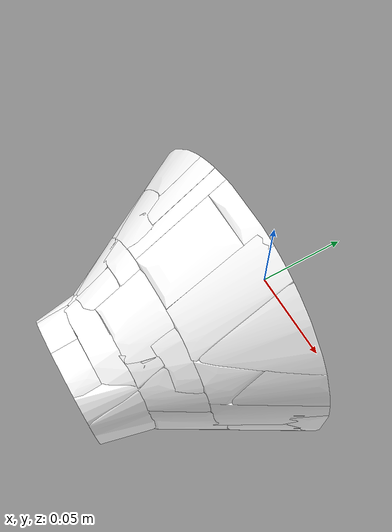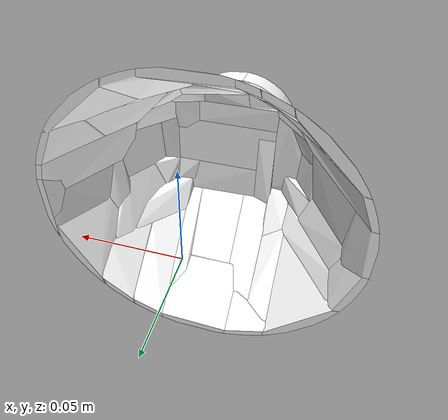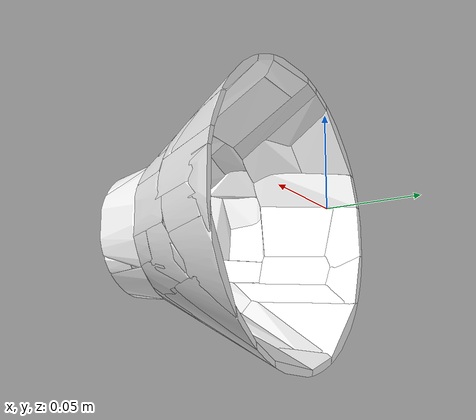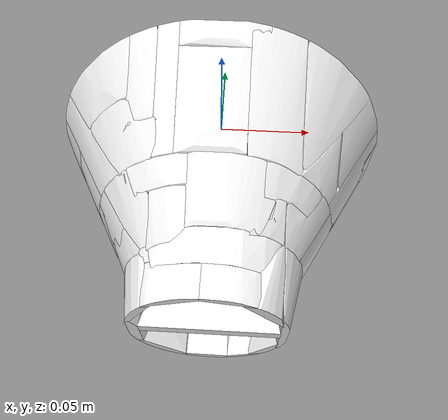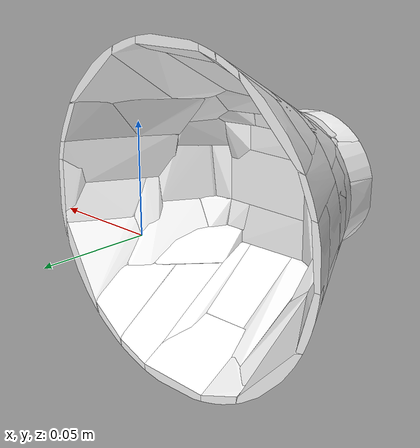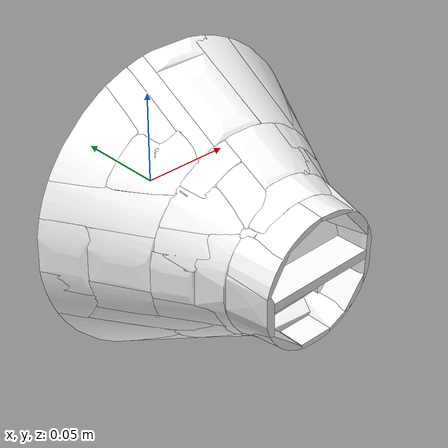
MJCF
<?xml version="1.0" ?>
<mujoco>
	<asset>
		<mesh name="bowl000" file="bowl_decomposed/bowl000.obj" scale="0.001 0.001 0.001"/>
		<mesh name="bowl001" file="bowl_decomposed/bowl001.obj" scale="0.001 0.001 0.001"/>
		<mesh name="bowl002" file="bowl_decomposed/bowl002.obj" scale="0.001 0.001 0.001"/>
		<mesh name="bowl003" file="bowl_decomposed/bowl003.obj" scale="0.001 0.001 0.001"/>
		<mesh name="bowl004" file="bowl_decomposed/bowl004.obj" scale="0.001 0.001 0.001"/>
		<mesh name="bowl005" file="bowl_decomposed/bowl005.obj" scale="0.001 0.001 0.001"/>
		<mesh name="bowl006" file="bowl_decomposed/bowl006.obj" scale="0.001 0.001 0.001"/>
		<mesh name="bowl007" file="bowl_decomposed/bowl007.obj" scale="0.001 0.001 0.001"/>
		<mesh name="bowl008" file="bowl_decomposed/bowl008.obj" scale="0.001 0.001 0.001"/>
		<mesh name="bowl009" file="bowl_decomposed/bowl009.obj" scale="0.001 0.001 0.001"/>
		<mesh name="bowl010" file="bowl_decomposed/bowl010.obj" scale="0.001 0.001 0.001"/>
		<mesh name="bowl011" file="bowl_decomposed/bowl011.obj" scale="0.001 0.001 0.001"/>
		<mesh name="bowl012" file="bowl_decomposed/bowl012.obj" scale="0.001 0.001 0.001"/>
		<mesh name="bowl013" file="bowl_decomposed/bowl013.obj" scale="0.001 0.001 0.001"/>
		<mesh name="bowl014" file="bowl_decomposed/bowl014.obj" scale="0.001 0.001 0.001"/>
		<mesh name="bowl015" file="bowl_decomposed/bowl015.obj" scale="0.001 0.001 0.001"/>
		<mesh name="bowl016" file="bowl_decomposed/bowl016.obj" scale="0.001 0.001 0.001"/>
		<mesh name="bowl017" file="bowl_decomposed/bowl017.obj" scale="0.001 0.001 0.001"/>
		<mesh name="bowl018" file="bowl_decomposed/bowl018.obj" scale="0.001 0.001 0.001"/>
		<mesh name="bowl019" file="bowl_decomposed/bowl019.obj" scale="0.001 0.001 0.001"/>
		<mesh name="bowl020" file="bowl_decomposed/bowl020.obj" scale="0.001 0.001 0.001"/>
		<mesh name="bowl021" file="bowl_decomposed/bowl021.obj" scale="0.001 0.001 0.001"/>
		<mesh name="bowl022" file="bowl_decomposed/bowl022.obj" scale="0.001 0.001 0.001"/>
		<mesh name="bowl023" file="bowl_decomposed/bowl023.obj" scale="0.001 0.001 0.001"/>
		<mesh name="bowl024" file="bowl_decomposed/bowl024.obj" scale="0.001 0.001 0.001"/>
		<mesh name="bowl025" file="bowl_decomposed/bowl025.obj" scale="0.001 0.001 0.001"/>
		<mesh name="bowl026" file="bowl_decomposed/bowl026.obj" scale="0.001 0.001 0.001"/>
		<mesh name="bowl027" file="bowl_decomposed/bowl027.obj" scale="0.001 0.001 0.001"/>
		<mesh name="bowl028" file="bowl_decomposed/bowl028.obj" scale="0.001 0.001 0.001"/>
		<mesh name="bowl029" file="bowl_decomposed/bowl029.obj" scale="0.001 0.001 0.001"/>
		<mesh name="bowl030" file="bowl_decomposed/bowl030.obj" scale="0.001 0.001 0.001"/>
		<mesh name="bowl031" file="bowl_decomposed/bowl031.obj" scale="0.001 0.001 0.001"/>
		<mesh name="bowl032" file="bowl_decomposed/bowl032.obj" scale="0.001 0.001 0.001"/>
		<mesh name="bowl033" file="bowl_decomposed/bowl033.obj" scale="0.001 0.001 0.001"/>
		<mesh name="bowl034" file="bowl_decomposed/bowl034.obj" scale="0.001 0.001 0.001"/>
		<mesh name="bowl035" file="bowl_decomposed/bowl035.obj" scale="0.001 0.001 0.001"/>
		<mesh name="bowl036" file="bowl_decomposed/bowl036.obj" scale="0.001 0.001 0.001"/>
		<mesh name="bowl037" file="bowl_decomposed/bowl037.obj" scale="0.001 0.001 0.001"/>
		<mesh name="bowl038" file="bowl_decomposed/bowl038.obj" scale="0.001 0.001 0.001"/>
		<mesh name="bowl039" file="bowl_decomposed/bowl039.obj" scale="0.001 0.001 0.001"/>
		<mesh name="bowl040" file="bowl_decomposed/bowl040.obj" scale="0.001 0.001 0.001"/>
		<mesh name="bowl041" file="bowl_decomposed/bowl041.obj" scale="0.001 0.001 0.001"/>
		<mesh name="bowl042" file="bowl_decomposed/bowl042.obj" scale="0.001 0.001 0.001"/>
		<mesh name="bowl043" file="bowl_decomposed/bowl043.obj" scale="0.001 0.001 0.001"/>
		<mesh name="bowl044" file="bowl_decomposed/bowl044.obj" scale="0.001 0.001 0.001"/>
		<mesh name="bowl045" file="bowl_decomposed/bowl045.obj" scale="0.001 0.001 0.001"/>
		<mesh name="bowl046" file="bowl_decomposed/bowl046.obj" scale="0.001 0.001 0.001"/>
		<mesh name="bowl047" file="bowl_decomposed/bowl047.obj" scale="0.001 0.001 0.001"/>
		<mesh name="bowl048" file="bowl_decomposed/bowl048.obj" scale="0.001 0.001 0.001"/>
		<mesh name="bowl049" file="bowl_decomposed/bowl049.obj" scale="0.001 0.001 0.001"/>
		<mesh name="bowl050" file="bowl_decomposed/bowl050.obj" scale="0.001 0.001 0.001"/>
		<mesh name="bowl051" file="bowl_decomposed/bowl051.obj" scale="0.001 0.001 0.001"/>
		<mesh name="bowl052" file="bowl_decomposed/bowl052.obj" scale="0.001 0.001 0.001"/>
		<mesh name="bowl053" file="bowl_decomposed/bowl053.obj" scale="0.001 0.001 0.001"/>
		<mesh name="bowl054" file="bowl_decomposed/bowl054.obj" scale="0.001 0.001 0.001"/>
		<mesh name="bowl055" file="bowl_decomposed/bowl055.obj" scale="0.001 0.001 0.001"/>
		<mesh name="bowl056" file="bowl_decomposed/bowl056.obj" scale="0.001 0.001 0.001"/>
		<mesh name="bowl057" file="bowl_decomposed/bowl057.obj" scale="0.001 0.001 0.001"/>
		<mesh name="bowl058" file="bowl_decomposed/bowl058.obj" scale="0.001 0.001 0.001"/>
		<mesh name="bowl059" file="bowl_decomposed/bowl059.obj" scale="0.001 0.001 0.001"/>
		<mesh name="bowl060" file="bowl_decomposed/bowl060.obj" scale="0.001 0.001 0.001"/>
		<mesh name="bowl061" file="bowl_decomposed/bowl061.obj" scale="0.001 0.001 0.001"/>
		<mesh name="bowl062" file="bowl_decomposed/bowl062.obj" scale="0.001 0.001 0.001"/>
		<mesh name="bowl063" file="bowl_decomposed/bowl063.obj" scale="0.001 0.001 0.001"/>
	</asset>
	<worldbody>
		<body>
			<geom name="bowl000_geom" type="mesh" mesh="bowl000" rgba="1 1 1 1"/>
			<geom name="bowl001_geom" type="mesh" mesh="bowl001" rgba="1 1 1 1"/>
			<geom name="bowl002_geom" type="mesh" mesh="bowl002" rgba="1 1 1 1"/>
			<geom name="bowl003_geom" type="mesh" mesh="bowl003" rgba="1 1 1 1"/>
			<geom name="bowl004_geom" type="mesh" mesh="bowl004" rgba="1 1 1 1"/>
			<geom name="bowl005_geom" type="mesh" mesh="bowl005" rgba="1 1 1 1"/>
			<geom name="bowl006_geom" type="mesh" mesh="bowl006" rgba="1 1 1 1"/>
			<geom name="bowl007_geom" type="mesh" mesh="bowl007" rgba="1 1 1 1"/>
			<geom name="bowl008_geom" type="mesh" mesh="bowl008" rgba="1 1 1 1"/>
			<geom name="bowl009_geom" type="mesh" mesh="bowl009" rgba="1 1 1 1"/>
			<geom name="bowl010_geom" type="mesh" mesh="bowl010" rgba="1 1 1 1"/>
			<geom name="bowl011_geom" type="mesh" mesh="bowl011" rgba="1 1 1 1"/>
			<geom name="bowl012_geom" type="mesh" mesh="bowl012" rgba="1 1 1 1"/>
			<geom name="bowl013_geom" type="mesh" mesh="bowl013" rgba="1 1 1 1"/>
			<geom name="bowl014_geom" type="mesh" mesh="bowl014" rgba="1 1 1 1"/>
			<geom name="bowl015_geom" type="mesh" mesh="bowl015" rgba="1 1 1 1"/>
			<geom name="bowl016_geom" type="mesh" mesh="bowl016" rgba="1 1 1 1"/>
			<geom name="bowl017_geom" type="mesh" mesh="bowl017" rgba="1 1 1 1"/>
			<geom name="bowl018_geom" type="mesh" mesh="bowl018" rgba="1 1 1 1"/>
			<geom name="bowl019_geom" type="mesh" mesh="bowl019" rgba="1 1 1 1"/>
			<geom name="bowl020_geom" type="mesh" mesh="bowl020" rgba="1 1 1 1"/>
			<geom name="bowl021_geom" type="mesh" mesh="bowl021" rgba="1 1 1 1"/>
			<geom name="bowl022_geom" type="mesh" mesh="bowl022" rgba="1 1 1 1"/>
			<geom name="bowl023_geom" type="mesh" mesh="bowl023" rgba="1 1 1 1"/>
			<geom name="bowl024_geom" type="mesh" mesh="bowl024" rgba="1 1 1 1"/>
			<geom name="bowl025_geom" type="mesh" mesh="bowl025" rgba="1 1 1 1"/>
			<geom name="bowl026_geom" type="mesh" mesh="bowl026" rgba="1 1 1 1"/>
			<geom name="bowl027_geom" type="mesh" mesh="bowl027" rgba="1 1 1 1"/>
			<geom name="bowl028_geom" type="mesh" mesh="bowl028" rgba="1 1 1 1"/>
			<geom name="bowl029_geom" type="mesh" mesh="bowl029" rgba="1 1 1 1"/>
			<geom name="bowl030_geom" type="mesh" mesh="bowl030" rgba="1 1 1 1"/>
			<geom name="bowl031_geom" type="mesh" mesh="bowl031" rgba="1 1 1 1"/>
			<geom name="bowl032_geom" type="mesh" mesh="bowl032" rgba="1 1 1 1"/>
			<geom name="bowl033_geom" type="mesh" mesh="bowl033" rgba="1 1 1 1"/>
			<geom name="bowl034_geom" type="mesh" mesh="bowl034" rgba="1 1 1 1"/>
			<geom name="bowl035_geom" type="mesh" mesh="bowl035" rgba="1 1 1 1"/>
			<geom name="bowl036_geom" type="mesh" mesh="bowl036" rgba="1 1 1 1"/>
			<geom name="bowl037_geom" type="mesh" mesh="bowl037" rgba="1 1 1 1"/>
			<geom name="bowl038_geom" type="mesh" mesh="bowl038" rgba="1 1 1 1"/>
			<geom name="bowl039_geom" type="mesh" mesh="bowl039" rgba="1 1 1 1"/>
			<geom name="bowl040_geom" type="mesh" mesh="bowl040" rgba="1 1 1 1"/>
			<geom name="bowl041_geom" type="mesh" mesh="bowl041" rgba="1 1 1 1"/>
			<geom name="bowl042_geom" type="mesh" mesh="bowl042" rgba="1 1 1 1"/>
			<geom name="bowl043_geom" type="mesh" mesh="bowl043" rgba="1 1 1 1"/>
			<geom name="bowl044_geom" type="mesh" mesh="bowl044" rgba="1 1 1 1"/>
			<geom name="bowl045_geom" type="mesh" mesh="bowl045" rgba="1 1 1 1"/>
			<geom name="bowl046_geom" type="mesh" mesh="bowl046" rgba="1 1 1 1"/>
			<geom name="bowl047_geom" type="mesh" mesh="bowl047" rgba="1 1 1 1"/>
			<geom name="bowl048_geom" type="mesh" mesh="bowl048" rgba="1 1 1 1"/>
			<geom name="bowl049_geom" type="mesh" mesh="bowl049" rgba="1 1 1 1"/>
			<geom name="bowl050_geom" type="mesh" mesh="bowl050" rgba="1 1 1 1"/>
			<geom name="bowl051_geom" type="mesh" mesh="bowl051" rgba="1 1 1 1"/>
			<geom name="bowl052_geom" type="mesh" mesh="bowl052" rgba="1 1 1 1"/>
			<geom name="bowl053_geom" type="mesh" mesh="bowl053" rgba="1 1 1 1"/>
			<geom name="bowl054_geom" type="mesh" mesh="bowl054" rgba="1 1 1 1"/>
			<geom name="bowl055_geom" type="mesh" mesh="bowl055" rgba="1 1 1 1"/>
			<geom name="bowl056_geom" type="mesh" mesh="bowl056" rgba="1 1 1 1"/>
			<geom name="bowl057_geom" type="mesh" mesh="bowl057" rgba="1 1 1 1"/>
			<geom name="bowl058_geom" type="mesh" mesh="bowl058" rgba="1 1 1 1"/>
			<geom name="bowl059_geom" type="mesh" mesh="bowl059" rgba="1 1 1 1"/>
			<geom name="bowl060_geom" type="mesh" mesh="bowl060" rgba="1 1 1 1"/>
			<geom name="bowl061_geom" type="mesh" mesh="bowl061" rgba="1 1 1 1"/>
			<geom name="bowl062_geom" type="mesh" mesh="bowl062" rgba="1 1 1 1"/>
			<geom name="bowl063_geom" type="mesh" mesh="bowl063" rgba="1 1 1 1"/>
		</body>
	</worldbody>
</mujoco>
